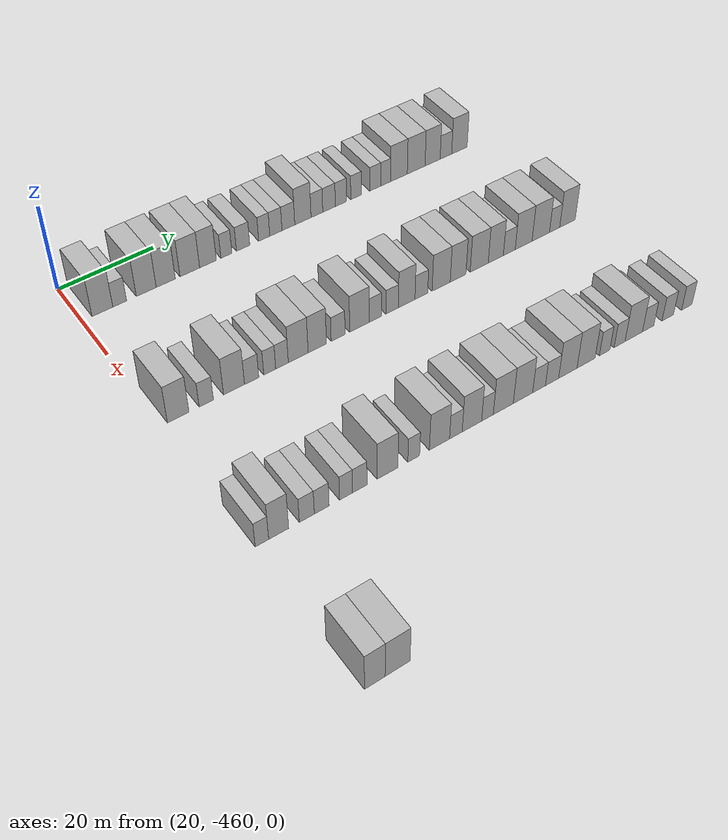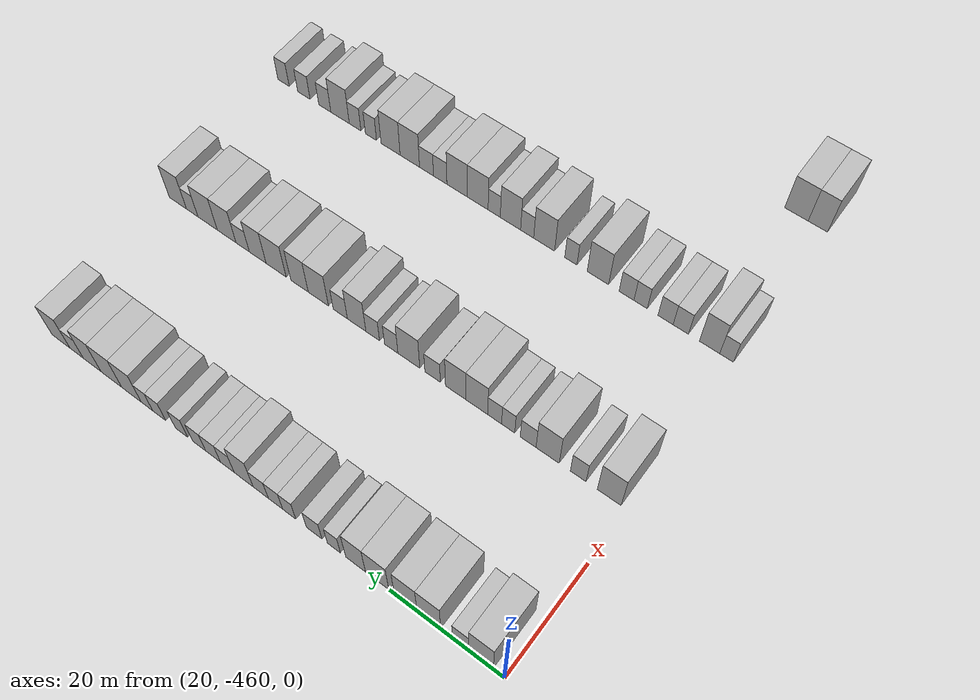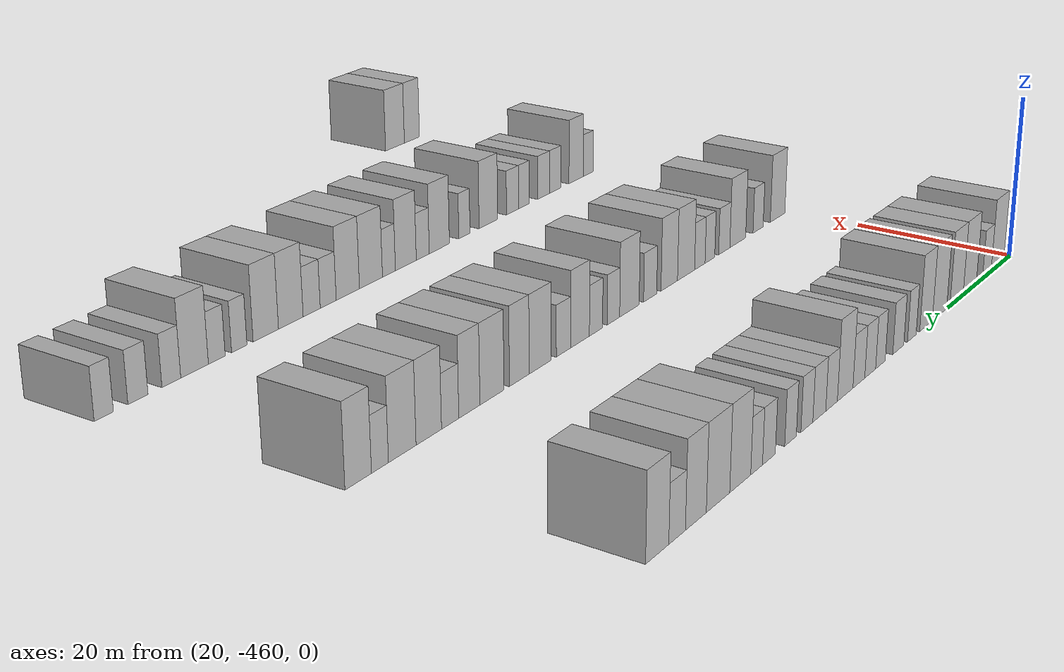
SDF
<sdf version="1.6">
 <world name="default">
  <model name="building_1">
   <static>1</static>
   <pose>25.0000 -455.8890 0 0.000000 0.000000 0.000000</pose>
   <link name="link">
    <pose>0 0 4.50 0 0 0</pose>
    <collision name="collision"><geometry><box><size>10.0000 4.2220 9.0000</size></box></geometry></collision>
    <visual name="visual">
     <cast_shadows>0</cast_shadows>
     <geometry><box><size>10.0000 4.2220 9.0000</size></box></geometry>
     <material>
      <script>
       <uri>model://HANNAS_wall/materials/scripts</uri>
       <uri>model://HANNAS_wall/materials/textures</uri>
       <name>vrc/HANNAS_wall</name>
      </script>
     </material>
    </visual>
   </link>
  </model>
  <model name="building_2">
   <static>1</static>
   <pose>25.0000 -452.3694 0 0.000000 0.000000 0.000000</pose>
   <link name="link">
    <pose>0 0 3.00 0 0 0</pose>
    <collision name="collision"><geometry><box><size>10.0000 2.8172 6.0000</size></box></geometry></collision>
    <visual name="visual">
     <cast_shadows>0</cast_shadows>
     <geometry><box><size>10.0000 2.8172 6.0000</size></box></geometry>
     <material>
      <script>
       <uri>model://HANNAS_wall/materials/scripts</uri>
       <uri>model://HANNAS_wall/materials/textures</uri>
       <name>vrc/HANNAS_wall</name>
      </script>
     </material>
    </visual>
   </link>
  </model>
  <model name="building_3">
   <static>1</static>
   <pose>25.0000 -446.8849 0 0.000000 0.000000 0.000000</pose>
   <link name="link">
    <pose>0 0 4.50 0 0 0</pose>
    <collision name="collision"><geometry><box><size>10.0000 4.1517 9.0000</size></box></geometry></collision>
    <visual name="visual">
     <cast_shadows>0</cast_shadows>
     <geometry><box><size>10.0000 4.1517 9.0000</size></box></geometry>
     <material>
      <script>
       <uri>model://HANNAS_wall/materials/scripts</uri>
       <uri>model://HANNAS_wall/materials/textures</uri>
       <name>vrc/HANNAS_wall</name>
      </script>
     </material>
    </visual>
   </link>
  </model>
  <model name="building_4">
   <static>1</static>
   <pose>25.0000 -442.7926 0 0.000000 0.000000 0.000000</pose>
   <link name="link">
    <pose>0 0 4.50 0 0 0</pose>
    <collision name="collision"><geometry><box><size>10.0000 4.0331 9.0000</size></box></geometry></collision>
    <visual name="visual">
     <cast_shadows>0</cast_shadows>
     <geometry><box><size>10.0000 4.0331 9.0000</size></box></geometry>
     <material>
      <script>
       <uri>model://HANNAS_wall/materials/scripts</uri>
       <uri>model://HANNAS_wall/materials/textures</uri>
       <name>vrc/HANNAS_wall</name>
      </script>
     </material>
    </visual>
   </link>
  </model>
  <model name="building_5">
   <static>1</static>
   <pose>25.0000 -437.6723 0 0.000000 0.000000 0.000000</pose>
   <link name="link">
    <pose>0 0 4.50 0 0 0</pose>
    <collision name="collision"><geometry><box><size>10.0000 4.2074 9.0000</size></box></geometry></collision>
    <visual name="visual">
     <cast_shadows>0</cast_shadows>
     <geometry><box><size>10.0000 4.2074 9.0000</size></box></geometry>
     <material>
      <script>
       <uri>model://HANNAS_wall/materials/scripts</uri>
       <uri>model://HANNAS_wall/materials/textures</uri>
       <name>vrc/HANNAS_wall</name>
      </script>
     </material>
    </visual>
   </link>
  </model>
  <model name="building_6">
   <static>1</static>
   <pose>25.0000 -433.7566 0 0.000000 0.000000 0.000000</pose>
   <link name="link">
    <pose>0 0 4.50 0 0 0</pose>
    <collision name="collision"><geometry><box><size>10.0000 3.6240 9.0000</size></box></geometry></collision>
    <visual name="visual">
     <cast_shadows>0</cast_shadows>
     <geometry><box><size>10.0000 3.6240 9.0000</size></box></geometry>
     <material>
      <script>
       <uri>model://HANNAS_wall/materials/scripts</uri>
       <uri>model://HANNAS_wall/materials/textures</uri>
       <name>vrc/HANNAS_wall</name>
      </script>
     </material>
    </visual>
   </link>
  </model>
  <model name="building_7">
   <static>1</static>
   <pose>25.0000 -429.7346 0 0.000000 0.000000 0.000000</pose>
   <link name="link">
    <pose>0 0 3.00 0 0 0</pose>
    <collision name="collision"><geometry><box><size>10.0000 2.4200 6.0000</size></box></geometry></collision>
    <visual name="visual">
     <cast_shadows>0</cast_shadows>
     <geometry><box><size>10.0000 2.4200 6.0000</size></box></geometry>
     <material>
      <script>
       <uri>model://HANNAS_wall/materials/scripts</uri>
       <uri>model://HANNAS_wall/materials/textures</uri>
       <name>vrc/HANNAS_wall</name>
      </script>
     </material>
    </visual>
   </link>
  </model>
  <model name="building_8">
   <static>1</static>
   <pose>25.0000 -426.0421 0 0.000000 0.000000 0.000000</pose>
   <link name="link">
    <pose>0 0 3.00 0 0 0</pose>
    <collision name="collision"><geometry><box><size>10.0000 2.9650 6.0000</size></box></geometry></collision>
    <visual name="visual">
     <cast_shadows>0</cast_shadows>
     <geometry><box><size>10.0000 2.9650 6.0000</size></box></geometry>
     <material>
      <script>
       <uri>model://HANNAS_wall/materials/scripts</uri>
       <uri>model://HANNAS_wall/materials/textures</uri>
       <name>vrc/HANNAS_wall</name>
      </script>
     </material>
    </visual>
   </link>
  </model>
  <model name="building_9">
   <static>1</static>
   <pose>25.0000 -421.3107 0 0.000000 0.000000 0.000000</pose>
   <link name="link">
    <pose>0 0 3.00 0 0 0</pose>
    <collision name="collision"><geometry><box><size>10.0000 2.4979 6.0000</size></box></geometry></collision>
    <visual name="visual">
     <cast_shadows>0</cast_shadows>
     <geometry><box><size>10.0000 2.4979 6.0000</size></box></geometry>
     <material>
      <script>
       <uri>model://HANNAS_wall/materials/scripts</uri>
       <uri>model://HANNAS_wall/materials/textures</uri>
       <name>vrc/HANNAS_wall</name>
      </script>
     </material>
    </visual>
   </link>
  </model>
  <model name="building_10">
   <static>1</static>
   <pose>25.0000 -418.6760 0 0.000000 0.000000 0.000000</pose>
   <link name="link">
    <pose>0 0 3.00 0 0 0</pose>
    <collision name="collision"><geometry><box><size>10.0000 2.7715 6.0000</size></box></geometry></collision>
    <visual name="visual">
     <cast_shadows>0</cast_shadows>
     <geometry><box><size>10.0000 2.7715 6.0000</size></box></geometry>
     <material>
      <script>
       <uri>model://HANNAS_wall/materials/scripts</uri>
       <uri>model://HANNAS_wall/materials/textures</uri>
       <name>vrc/HANNAS_wall</name>
      </script>
     </material>
    </visual>
   </link>
  </model>
  <model name="building_11">
   <static>1</static>
   <pose>25.0000 -415.8218 0 0.000000 0.000000 0.000000</pose>
   <link name="link">
    <pose>0 0 3.00 0 0 0</pose>
    <collision name="collision"><geometry><box><size>10.0000 2.9370 6.0000</size></box></geometry></collision>
    <visual name="visual">
     <cast_shadows>0</cast_shadows>
     <geometry><box><size>10.0000 2.9370 6.0000</size></box></geometry>
     <material>
      <script>
       <uri>model://HANNAS_wall/materials/scripts</uri>
       <uri>model://HANNAS_wall/materials/textures</uri>
       <name>vrc/HANNAS_wall</name>
      </script>
     </material>
    </visual>
   </link>
  </model>
  <model name="building_12">
   <static>1</static>
   <pose>25.0000 -412.4712 0 0.000000 0.000000 0.000000</pose>
   <link name="link">
    <pose>0 0 4.50 0 0 0</pose>
    <collision name="collision"><geometry><box><size>10.0000 3.7641 9.0000</size></box></geometry></collision>
    <visual name="visual">
     <cast_shadows>0</cast_shadows>
     <geometry><box><size>10.0000 3.7641 9.0000</size></box></geometry>
     <material>
      <script>
       <uri>model://HANNAS_wall/materials/scripts</uri>
       <uri>model://HANNAS_wall/materials/textures</uri>
       <name>vrc/HANNAS_wall</name>
      </script>
     </material>
    </visual>
   </link>
  </model>
  <model name="building_13">
   <static>1</static>
   <pose>25.0000 -409.2177 0 0.000000 0.000000 0.000000</pose>
   <link name="link">
    <pose>0 0 3.00 0 0 0</pose>
    <collision name="collision"><geometry><box><size>10.0000 2.7430 6.0000</size></box></geometry></collision>
    <visual name="visual">
     <cast_shadows>0</cast_shadows>
     <geometry><box><size>10.0000 2.7430 6.0000</size></box></geometry>
     <material>
      <script>
       <uri>model://HANNAS_wall/materials/scripts</uri>
       <uri>model://HANNAS_wall/materials/textures</uri>
       <name>vrc/HANNAS_wall</name>
      </script>
     </material>
    </visual>
   </link>
  </model>
  <model name="building_14">
   <static>1</static>
   <pose>25.0000 -406.3590 0 0.000000 0.000000 0.000000</pose>
   <link name="link">
    <pose>0 0 3.00 0 0 0</pose>
    <collision name="collision"><geometry><box><size>10.0000 2.9744 6.0000</size></box></geometry></collision>
    <visual name="visual">
     <cast_shadows>0</cast_shadows>
     <geometry><box><size>10.0000 2.9744 6.0000</size></box></geometry>
     <material>
      <script>
       <uri>model://HANNAS_wall/materials/scripts</uri>
       <uri>model://HANNAS_wall/materials/textures</uri>
       <name>vrc/HANNAS_wall</name>
      </script>
     </material>
    </visual>
   </link>
  </model>
  <model name="building_15">
   <static>1</static>
   <pose>25.0000 -403.5339 0 0.000000 0.000000 0.000000</pose>
   <link name="link">
    <pose>0 0 3.00 0 0 0</pose>
    <collision name="collision"><geometry><box><size>10.0000 2.6758 6.0000</size></box></geometry></collision>
    <visual name="visual">
     <cast_shadows>0</cast_shadows>
     <geometry><box><size>10.0000 2.6758 6.0000</size></box></geometry>
     <material>
      <script>
       <uri>model://HANNAS_wall/materials/scripts</uri>
       <uri>model://HANNAS_wall/materials/textures</uri>
       <name>vrc/HANNAS_wall</name>
      </script>
     </material>
    </visual>
   </link>
  </model>
  <model name="building_16">
   <static>1</static>
   <pose>25.0000 -399.9270 0 0.000000 0.000000 0.000000</pose>
   <link name="link">
    <pose>0 0 3.00 0 0 0</pose>
    <collision name="collision"><geometry><box><size>10.0000 2.5380 6.0000</size></box></geometry></collision>
    <visual name="visual">
     <cast_shadows>0</cast_shadows>
     <geometry><box><size>10.0000 2.5380 6.0000</size></box></geometry>
     <material>
      <script>
       <uri>model://HANNAS_wall/materials/scripts</uri>
       <uri>model://HANNAS_wall/materials/textures</uri>
       <name>vrc/HANNAS_wall</name>
      </script>
     </material>
    </visual>
   </link>
  </model>
  <model name="building_17">
   <static>1</static>
   <pose>25.0000 -395.3176 0 0.000000 0.000000 0.000000</pose>
   <link name="link">
    <pose>0 0 3.00 0 0 0</pose>
    <collision name="collision"><geometry><box><size>10.0000 2.6808 6.0000</size></box></geometry></collision>
    <visual name="visual">
     <cast_shadows>0</cast_shadows>
     <geometry><box><size>10.0000 2.6808 6.0000</size></box></geometry>
     <material>
      <script>
       <uri>model://HANNAS_wall/materials/scripts</uri>
       <uri>model://HANNAS_wall/materials/textures</uri>
       <name>vrc/HANNAS_wall</name>
      </script>
     </material>
    </visual>
   </link>
  </model>
  <model name="building_18">
   <static>1</static>
   <pose>25.0000 -392.7767 0 0.000000 0.000000 0.000000</pose>
   <link name="link">
    <pose>0 0 3.00 0 0 0</pose>
    <collision name="collision"><geometry><box><size>10.0000 2.4010 6.0000</size></box></geometry></collision>
    <visual name="visual">
     <cast_shadows>0</cast_shadows>
     <geometry><box><size>10.0000 2.4010 6.0000</size></box></geometry>
     <material>
      <script>
       <uri>model://HANNAS_wall/materials/scripts</uri>
       <uri>model://HANNAS_wall/materials/textures</uri>
       <name>vrc/HANNAS_wall</name>
      </script>
     </material>
    </visual>
   </link>
  </model>
  <model name="building_19">
   <static>1</static>
   <pose>25.0000 -389.4952 0 0.000000 0.000000 0.000000</pose>
   <link name="link">
    <pose>0 0 4.50 0 0 0</pose>
    <collision name="collision"><geometry><box><size>10.0000 4.1621 9.0000</size></box></geometry></collision>
    <visual name="visual">
     <cast_shadows>0</cast_shadows>
     <geometry><box><size>10.0000 4.1621 9.0000</size></box></geometry>
     <material>
      <script>
       <uri>model://HANNAS_wall/materials/scripts</uri>
       <uri>model://HANNAS_wall/materials/textures</uri>
       <name>vrc/HANNAS_wall</name>
      </script>
     </material>
    </visual>
   </link>
  </model>
  <model name="building_20">
   <static>1</static>
   <pose>25.0000 -385.1823 0 0.000000 0.000000 0.000000</pose>
   <link name="link">
    <pose>0 0 4.50 0 0 0</pose>
    <collision name="collision"><geometry><box><size>10.0000 4.4636 9.0000</size></box></geometry></collision>
    <visual name="visual">
     <cast_shadows>0</cast_shadows>
     <geometry><box><size>10.0000 4.4636 9.0000</size></box></geometry>
     <material>
      <script>
       <uri>model://HANNAS_wall/materials/scripts</uri>
       <uri>model://HANNAS_wall/materials/textures</uri>
       <name>vrc/HANNAS_wall</name>
      </script>
     </material>
    </visual>
   </link>
  </model>
  <model name="building_21">
   <static>1</static>
   <pose>25.0000 -381.0344 0 0.000000 0.000000 0.000000</pose>
   <link name="link">
    <pose>0 0 4.50 0 0 0</pose>
    <collision name="collision"><geometry><box><size>10.0000 3.8322 9.0000</size></box></geometry></collision>
    <visual name="visual">
     <cast_shadows>0</cast_shadows>
     <geometry><box><size>10.0000 3.8322 9.0000</size></box></geometry>
     <material>
      <script>
       <uri>model://HANNAS_wall/materials/scripts</uri>
       <uri>model://HANNAS_wall/materials/textures</uri>
       <name>vrc/HANNAS_wall</name>
      </script>
     </material>
    </visual>
   </link>
  </model>
  <model name="building_22">
   <static>1</static>
   <pose>25.0000 -377.6439 0 0.000000 0.000000 0.000000</pose>
   <link name="link">
    <pose>0 0 3.00 0 0 0</pose>
    <collision name="collision"><geometry><box><size>10.0000 2.9487 6.0000</size></box></geometry></collision>
    <visual name="visual">
     <cast_shadows>0</cast_shadows>
     <geometry><box><size>10.0000 2.9487 6.0000</size></box></geometry>
     <material>
      <script>
       <uri>model://HANNAS_wall/materials/scripts</uri>
       <uri>model://HANNAS_wall/materials/textures</uri>
       <name>vrc/HANNAS_wall</name>
      </script>
     </material>
    </visual>
   </link>
  </model>
  <model name="building_23">
   <static>1</static>
   <pose>25.0000 -374.1753 0 0.000000 0.000000 0.000000</pose>
   <link name="link">
    <pose>0 0 4.50 0 0 0</pose>
    <collision name="collision"><geometry><box><size>10.0000 3.9885 9.0000</size></box></geometry></collision>
    <visual name="visual">
     <cast_shadows>0</cast_shadows>
     <geometry><box><size>10.0000 3.9885 9.0000</size></box></geometry>
     <material>
      <script>
       <uri>model://HANNAS_wall/materials/scripts</uri>
       <uri>model://HANNAS_wall/materials/textures</uri>
       <name>vrc/HANNAS_wall</name>
      </script>
     </material>
    </visual>
   </link>
  </model>
  <model name="building_221">
   <static>1</static>
   <pose>55.0000 -456.9193 0 0.000000 0.000000 0.000000</pose>
   <link name="link">
    <pose>0 0 4.50 0 0 0</pose>
    <collision name="collision"><geometry><box><size>10.0000 4.1615 9.0000</size></box></geometry></collision>
    <visual name="visual">
     <cast_shadows>0</cast_shadows>
     <geometry><box><size>10.0000 4.1615 9.0000</size></box></geometry>
     <material>
      <script>
       <uri>model://HANNAS_wall/materials/scripts</uri>
       <uri>model://HANNAS_wall/materials/textures</uri>
       <name>vrc/HANNAS_wall</name>
      </script>
     </material>
    </visual>
   </link>
  </model>
  <model name="building_222">
   <static>1</static>
   <pose>55.0000 -451.4368 0 0.000000 0.000000 0.000000</pose>
   <link name="link">
    <pose>0 0 3.00 0 0 0</pose>
    <collision name="collision"><geometry><box><size>10.0000 2.8035 6.0000</size></box></geometry></collision>
    <visual name="visual">
     <cast_shadows>0</cast_shadows>
     <geometry><box><size>10.0000 2.8035 6.0000</size></box></geometry>
     <material>
      <script>
       <uri>model://HANNAS_wall/materials/scripts</uri>
       <uri>model://HANNAS_wall/materials/textures</uri>
       <name>vrc/HANNAS_wall</name>
      </script>
     </material>
    </visual>
   </link>
  </model>
  <model name="building_223">
   <static>1</static>
   <pose>55.0000 -445.9340 0 0.000000 0.000000 0.000000</pose>
   <link name="link">
    <pose>0 0 4.50 0 0 0</pose>
    <collision name="collision"><geometry><box><size>10.0000 4.2020 9.0000</size></box></geometry></collision>
    <visual name="visual">
     <cast_shadows>0</cast_shadows>
     <geometry><box><size>10.0000 4.2020 9.0000</size></box></geometry>
     <material>
      <script>
       <uri>model://HANNAS_wall/materials/scripts</uri>
       <uri>model://HANNAS_wall/materials/textures</uri>
       <name>vrc/HANNAS_wall</name>
      </script>
     </material>
    </visual>
   </link>
  </model>
  <model name="building_224">
   <static>1</static>
   <pose>55.0000 -442.3796 0 0.000000 0.000000 0.000000</pose>
   <link name="link">
    <pose>0 0 3.00 0 0 0</pose>
    <collision name="collision"><geometry><box><size>10.0000 2.9067 6.0000</size></box></geometry></collision>
    <visual name="visual">
     <cast_shadows>0</cast_shadows>
     <geometry><box><size>10.0000 2.9067 6.0000</size></box></geometry>
     <material>
      <script>
       <uri>model://HANNAS_wall/materials/scripts</uri>
       <uri>model://HANNAS_wall/materials/textures</uri>
       <name>vrc/HANNAS_wall</name>
      </script>
     </material>
    </visual>
   </link>
  </model>
  <model name="building_225">
   <static>1</static>
   <pose>55.0000 -438.6999 0 0.000000 0.000000 0.000000</pose>
   <link name="link">
    <pose>0 0 3.00 0 0 0</pose>
    <collision name="collision"><geometry><box><size>10.0000 2.4529 6.0000</size></box></geometry></collision>
    <visual name="visual">
     <cast_shadows>0</cast_shadows>
     <geometry><box><size>10.0000 2.4529 6.0000</size></box></geometry>
     <material>
      <script>
       <uri>model://HANNAS_wall/materials/scripts</uri>
       <uri>model://HANNAS_wall/materials/textures</uri>
       <name>vrc/HANNAS_wall</name>
      </script>
     </material>
    </visual>
   </link>
  </model>
  <model name="building_226">
   <static>1</static>
   <pose>55.0000 -436.1670 0 0.000000 0.000000 0.000000</pose>
   <link name="link">
    <pose>0 0 3.00 0 0 0</pose>
    <collision name="collision"><geometry><box><size>10.0000 2.6129 6.0000</size></box></geometry></collision>
    <visual name="visual">
     <cast_shadows>0</cast_shadows>
     <geometry><box><size>10.0000 2.6129 6.0000</size></box></geometry>
     <material>
      <script>
       <uri>model://HANNAS_wall/materials/scripts</uri>
       <uri>model://HANNAS_wall/materials/textures</uri>
       <name>vrc/HANNAS_wall</name>
      </script>
     </material>
    </visual>
   </link>
  </model>
  <model name="building_227">
   <static>1</static>
   <pose>55.0000 -432.7892 0 0.000000 0.000000 0.000000</pose>
   <link name="link">
    <pose>0 0 4.50 0 0 0</pose>
    <collision name="collision"><geometry><box><size>10.0000 4.1426 9.0000</size></box></geometry></collision>
    <visual name="visual">
     <cast_shadows>0</cast_shadows>
     <geometry><box><size>10.0000 4.1426 9.0000</size></box></geometry>
     <material>
      <script>
       <uri>model://HANNAS_wall/materials/scripts</uri>
       <uri>model://HANNAS_wall/materials/textures</uri>
       <name>vrc/HANNAS_wall</name>
      </script>
     </material>
    </visual>
   </link>
  </model>
  <model name="building_228">
   <static>1</static>
   <pose>55.0000 -428.7722 0 0.000000 0.000000 0.000000</pose>
   <link name="link">
    <pose>0 0 4.50 0 0 0</pose>
    <collision name="collision"><geometry><box><size>10.0000 3.8914 9.0000</size></box></geometry></collision>
    <visual name="visual">
     <cast_shadows>0</cast_shadows>
     <geometry><box><size>10.0000 3.8914 9.0000</size></box></geometry>
     <material>
      <script>
       <uri>model://HANNAS_wall/materials/scripts</uri>
       <uri>model://HANNAS_wall/materials/textures</uri>
       <name>vrc/HANNAS_wall</name>
      </script>
     </material>
    </visual>
   </link>
  </model>
  <model name="building_229">
   <static>1</static>
   <pose>55.0000 -424.3291 0 0.000000 0.000000 0.000000</pose>
   <link name="link">
    <pose>0 0 3.00 0 0 0</pose>
    <collision name="collision"><geometry><box><size>10.0000 2.9947 6.0000</size></box></geometry></collision>
    <visual name="visual">
     <cast_shadows>0</cast_shadows>
     <geometry><box><size>10.0000 2.9947 6.0000</size></box></geometry>
     <material>
      <script>
       <uri>model://HANNAS_wall/materials/scripts</uri>
       <uri>model://HANNAS_wall/materials/textures</uri>
       <name>vrc/HANNAS_wall</name>
      </script>
     </material>
    </visual>
   </link>
  </model>
  <model name="building_230">
   <static>1</static>
   <pose>55.0000 -419.6788 0 0.000000 0.000000 0.000000</pose>
   <link name="link">
    <pose>0 0 4.50 0 0 0</pose>
    <collision name="collision"><geometry><box><size>10.0000 4.3059 9.0000</size></box></geometry></collision>
    <visual name="visual">
     <cast_shadows>0</cast_shadows>
     <geometry><box><size>10.0000 4.3059 9.0000</size></box></geometry>
     <material>
      <script>
       <uri>model://HANNAS_wall/materials/scripts</uri>
       <uri>model://HANNAS_wall/materials/textures</uri>
       <name>vrc/HANNAS_wall</name>
      </script>
     </material>
    </visual>
   </link>
  </model>
  <model name="building_231">
   <static>1</static>
   <pose>55.0000 -416.1944 0 0.000000 0.000000 0.000000</pose>
   <link name="link">
    <pose>0 0 3.00 0 0 0</pose>
    <collision name="collision"><geometry><box><size>10.0000 2.6628 6.0000</size></box></geometry></collision>
    <visual name="visual">
     <cast_shadows>0</cast_shadows>
     <geometry><box><size>10.0000 2.6628 6.0000</size></box></geometry>
     <material>
      <script>
       <uri>model://HANNAS_wall/materials/scripts</uri>
       <uri>model://HANNAS_wall/materials/textures</uri>
       <name>vrc/HANNAS_wall</name>
      </script>
     </material>
    </visual>
   </link>
  </model>
  <model name="building_232">
   <static>1</static>
   <pose>55.0000 -412.4832 0 0.000000 0.000000 0.000000</pose>
   <link name="link">
    <pose>0 0 3.00 0 0 0</pose>
    <collision name="collision"><geometry><box><size>10.0000 2.7597 6.0000</size></box></geometry></collision>
    <visual name="visual">
     <cast_shadows>0</cast_shadows>
     <geometry><box><size>10.0000 2.7597 6.0000</size></box></geometry>
     <material>
      <script>
       <uri>model://HANNAS_wall/materials/scripts</uri>
       <uri>model://HANNAS_wall/materials/textures</uri>
       <name>vrc/HANNAS_wall</name>
      </script>
     </material>
    </visual>
   </link>
  </model>
  <model name="building_233">
   <static>1</static>
   <pose>55.0000 -409.2207 0 0.000000 0.000000 0.000000</pose>
   <link name="link">
    <pose>0 0 4.50 0 0 0</pose>
    <collision name="collision"><geometry><box><size>10.0000 3.7652 9.0000</size></box></geometry></collision>
    <visual name="visual">
     <cast_shadows>0</cast_shadows>
     <geometry><box><size>10.0000 3.7652 9.0000</size></box></geometry>
     <material>
      <script>
       <uri>model://HANNAS_wall/materials/scripts</uri>
       <uri>model://HANNAS_wall/materials/textures</uri>
       <name>vrc/HANNAS_wall</name>
      </script>
     </material>
    </visual>
   </link>
  </model>
  <model name="building_234">
   <static>1</static>
   <pose>55.0000 -405.8837 0 0.000000 0.000000 0.000000</pose>
   <link name="link">
    <pose>0 0 3.00 0 0 0</pose>
    <collision name="collision"><geometry><box><size>10.0000 2.9087 6.0000</size></box></geometry></collision>
    <visual name="visual">
     <cast_shadows>0</cast_shadows>
     <geometry><box><size>10.0000 2.9087 6.0000</size></box></geometry>
     <material>
      <script>
       <uri>model://HANNAS_wall/materials/scripts</uri>
       <uri>model://HANNAS_wall/materials/textures</uri>
       <name>vrc/HANNAS_wall</name>
      </script>
     </material>
    </visual>
   </link>
  </model>
  <model name="building_235">
   <static>1</static>
   <pose>55.0000 -401.3225 0 0.000000 0.000000 0.000000</pose>
   <link name="link">
    <pose>0 0 4.50 0 0 0</pose>
    <collision name="collision"><geometry><box><size>10.0000 4.2138 9.0000</size></box></geometry></collision>
    <visual name="visual">
     <cast_shadows>0</cast_shadows>
     <geometry><box><size>10.0000 4.2138 9.0000</size></box></geometry>
     <material>
      <script>
       <uri>model://HANNAS_wall/materials/scripts</uri>
       <uri>model://HANNAS_wall/materials/textures</uri>
       <name>vrc/HANNAS_wall</name>
      </script>
     </material>
    </visual>
   </link>
  </model>
  <model name="building_236">
   <static>1</static>
   <pose>55.0000 -397.3807 0 0.000000 0.000000 0.000000</pose>
   <link name="link">
    <pose>0 0 4.50 0 0 0</pose>
    <collision name="collision"><geometry><box><size>10.0000 3.6699 9.0000</size></box></geometry></collision>
    <visual name="visual">
     <cast_shadows>0</cast_shadows>
     <geometry><box><size>10.0000 3.6699 9.0000</size></box></geometry>
     <material>
      <script>
       <uri>model://HANNAS_wall/materials/scripts</uri>
       <uri>model://HANNAS_wall/materials/textures</uri>
       <name>vrc/HANNAS_wall</name>
      </script>
     </material>
    </visual>
   </link>
  </model>
  <model name="building_237">
   <static>1</static>
   <pose>55.0000 -392.3970 0 0.000000 0.000000 0.000000</pose>
   <link name="link">
    <pose>0 0 4.50 0 0 0</pose>
    <collision name="collision"><geometry><box><size>10.0000 4.2975 9.0000</size></box></geometry></collision>
    <visual name="visual">
     <cast_shadows>0</cast_shadows>
     <geometry><box><size>10.0000 4.2975 9.0000</size></box></geometry>
     <material>
      <script>
       <uri>model://HANNAS_wall/materials/scripts</uri>
       <uri>model://HANNAS_wall/materials/textures</uri>
       <name>vrc/HANNAS_wall</name>
      </script>
     </material>
    </visual>
   </link>
  </model>
  <model name="building_238">
   <static>1</static>
   <pose>55.0000 -388.4258 0 0.000000 0.000000 0.000000</pose>
   <link name="link">
    <pose>0 0 4.50 0 0 0</pose>
    <collision name="collision"><geometry><box><size>10.0000 3.6450 9.0000</size></box></geometry></collision>
    <visual name="visual">
     <cast_shadows>0</cast_shadows>
     <geometry><box><size>10.0000 3.6450 9.0000</size></box></geometry>
     <material>
      <script>
       <uri>model://HANNAS_wall/materials/scripts</uri>
       <uri>model://HANNAS_wall/materials/textures</uri>
       <name>vrc/HANNAS_wall</name>
      </script>
     </material>
    </visual>
   </link>
  </model>
  <model name="building_239">
   <static>1</static>
   <pose>55.0000 -385.1523 0 0.000000 0.000000 0.000000</pose>
   <link name="link">
    <pose>0 0 3.00 0 0 0</pose>
    <collision name="collision"><geometry><box><size>10.0000 2.9019 6.0000</size></box></geometry></collision>
    <visual name="visual">
     <cast_shadows>0</cast_shadows>
     <geometry><box><size>10.0000 2.9019 6.0000</size></box></geometry>
     <material>
      <script>
       <uri>model://HANNAS_wall/materials/scripts</uri>
       <uri>model://HANNAS_wall/materials/textures</uri>
       <name>vrc/HANNAS_wall</name>
      </script>
     </material>
    </visual>
   </link>
  </model>
  <model name="building_240">
   <static>1</static>
   <pose>55.0000 -381.6279 0 0.000000 0.000000 0.000000</pose>
   <link name="link">
    <pose>0 0 4.50 0 0 0</pose>
    <collision name="collision"><geometry><box><size>10.0000 4.1470 9.0000</size></box></geometry></collision>
    <visual name="visual">
     <cast_shadows>0</cast_shadows>
     <geometry><box><size>10.0000 4.1470 9.0000</size></box></geometry>
     <material>
      <script>
       <uri>model://HANNAS_wall/materials/scripts</uri>
       <uri>model://HANNAS_wall/materials/textures</uri>
       <name>vrc/HANNAS_wall</name>
      </script>
     </material>
    </visual>
   </link>
  </model>
  <model name="building_241">
   <static>1</static>
   <pose>55.0000 -377.3873 0 0.000000 0.000000 0.000000</pose>
   <link name="link">
    <pose>0 0 4.50 0 0 0</pose>
    <collision name="collision"><geometry><box><size>10.0000 4.3341 9.0000</size></box></geometry></collision>
    <visual name="visual">
     <cast_shadows>0</cast_shadows>
     <geometry><box><size>10.0000 4.3341 9.0000</size></box></geometry>
     <material>
      <script>
       <uri>model://HANNAS_wall/materials/scripts</uri>
       <uri>model://HANNAS_wall/materials/textures</uri>
       <name>vrc/HANNAS_wall</name>
      </script>
     </material>
    </visual>
   </link>
  </model>
  <model name="building_242">
   <static>1</static>
   <pose>55.0000 -373.9273 0 0.000000 0.000000 0.000000</pose>
   <link name="link">
    <pose>0 0 3.00 0 0 0</pose>
    <collision name="collision"><geometry><box><size>10.0000 2.5858 6.0000</size></box></geometry></collision>
    <visual name="visual">
     <cast_shadows>0</cast_shadows>
     <geometry><box><size>10.0000 2.5858 6.0000</size></box></geometry>
     <material>
      <script>
       <uri>model://HANNAS_wall/materials/scripts</uri>
       <uri>model://HANNAS_wall/materials/textures</uri>
       <name>vrc/HANNAS_wall</name>
      </script>
     </material>
    </visual>
   </link>
  </model>
  <model name="building_243">
   <static>1</static>
   <pose>55.0000 -370.6702 0 0.000000 0.000000 0.000000</pose>
   <link name="link">
    <pose>0 0 4.50 0 0 0</pose>
    <collision name="collision"><geometry><box><size>10.0000 3.9283 9.0000</size></box></geometry></collision>
    <visual name="visual">
     <cast_shadows>0</cast_shadows>
     <geometry><box><size>10.0000 3.9283 9.0000</size></box></geometry>
     <material>
      <script>
       <uri>model://HANNAS_wall/materials/scripts</uri>
       <uri>model://HANNAS_wall/materials/textures</uri>
       <name>vrc/HANNAS_wall</name>
      </script>
     </material>
    </visual>
   </link>
  </model>
  <model name="building_454">
   <static>1</static>
   <pose>85.0000 -458.7617 0 0.000000 0.000000 0.000000</pose>
   <link name="link">
    <pose>0 0 3.00 0 0 0</pose>
    <collision name="collision"><geometry><box><size>10.0000 2.4766 6.0000</size></box></geometry></collision>
    <visual name="visual">
     <cast_shadows>0</cast_shadows>
     <geometry><box><size>10.0000 2.4766 6.0000</size></box></geometry>
     <material>
      <script>
       <uri>model://HANNAS_wall/materials/scripts</uri>
       <uri>model://HANNAS_wall/materials/textures</uri>
       <name>vrc/HANNAS_wall</name>
      </script>
     </material>
    </visual>
   </link>
  </model>
  <model name="building_455">
   <static>1</static>
   <pose>85.0000 -455.6741 0 0.000000 0.000000 0.000000</pose>
   <link name="link">
    <pose>0 0 4.50 0 0 0</pose>
    <collision name="collision"><geometry><box><size>10.0000 3.6985 9.0000</size></box></geometry></collision>
    <visual name="visual">
     <cast_shadows>0</cast_shadows>
     <geometry><box><size>10.0000 3.6985 9.0000</size></box></geometry>
     <material>
      <script>
       <uri>model://HANNAS_wall/materials/scripts</uri>
       <uri>model://HANNAS_wall/materials/textures</uri>
       <name>vrc/HANNAS_wall</name>
      </script>
     </material>
    </visual>
   </link>
  </model>
  <model name="building_456">
   <static>1</static>
   <pose>85.0000 -450.4075 0 0.000000 0.000000 0.000000</pose>
   <link name="link">
    <pose>0 0 3.00 0 0 0</pose>
    <collision name="collision"><geometry><box><size>10.0000 2.8347 6.0000</size></box></geometry></collision>
    <visual name="visual">
     <cast_shadows>0</cast_shadows>
     <geometry><box><size>10.0000 2.8347 6.0000</size></box></geometry>
     <material>
      <script>
       <uri>model://HANNAS_wall/materials/scripts</uri>
       <uri>model://HANNAS_wall/materials/textures</uri>
       <name>vrc/HANNAS_wall</name>
      </script>
     </material>
    </visual>
   </link>
  </model>
  <model name="building_457">
   <static>1</static>
   <pose>85.0000 -447.5774 0 0.000000 0.000000 0.000000</pose>
   <link name="link">
    <pose>0 0 3.00 0 0 0</pose>
    <collision name="collision"><geometry><box><size>10.0000 2.8254 6.0000</size></box></geometry></collision>
    <visual name="visual">
     <cast_shadows>0</cast_shadows>
     <geometry><box><size>10.0000 2.8254 6.0000</size></box></geometry>
     <material>
      <script>
       <uri>model://HANNAS_wall/materials/scripts</uri>
       <uri>model://HANNAS_wall/materials/textures</uri>
       <name>vrc/HANNAS_wall</name>
      </script>
     </material>
    </visual>
   </link>
  </model>
  <model name="building_458">
   <static>1</static>
   <pose>85.0000 -442.9022 0 0.000000 0.000000 0.000000</pose>
   <link name="link">
    <pose>0 0 3.00 0 0 0</pose>
    <collision name="collision"><geometry><box><size>10.0000 2.5251 6.0000</size></box></geometry></collision>
    <visual name="visual">
     <cast_shadows>0</cast_shadows>
     <geometry><box><size>10.0000 2.5251 6.0000</size></box></geometry>
     <material>
      <script>
       <uri>model://HANNAS_wall/materials/scripts</uri>
       <uri>model://HANNAS_wall/materials/textures</uri>
       <name>vrc/HANNAS_wall</name>
      </script>
     </material>
    </visual>
   </link>
  </model>
  <model name="building_459">
   <static>1</static>
   <pose>85.0000 -440.2230 0 0.000000 0.000000 0.000000</pose>
   <link name="link">
    <pose>0 0 3.00 0 0 0</pose>
    <collision name="collision"><geometry><box><size>10.0000 2.8334 6.0000</size></box></geometry></collision>
    <visual name="visual">
     <cast_shadows>0</cast_shadows>
     <geometry><box><size>10.0000 2.8334 6.0000</size></box></geometry>
     <material>
      <script>
       <uri>model://HANNAS_wall/materials/scripts</uri>
       <uri>model://HANNAS_wall/materials/textures</uri>
       <name>vrc/HANNAS_wall</name>
      </script>
     </material>
    </visual>
   </link>
  </model>
  <model name="building_460">
   <static>1</static>
   <pose>85.0000 -434.7252 0 0.000000 0.000000 0.000000</pose>
   <link name="link">
    <pose>0 0 4.50 0 0 0</pose>
    <collision name="collision"><geometry><box><size>10.0000 4.1620 9.0000</size></box></geometry></collision>
    <visual name="visual">
     <cast_shadows>0</cast_shadows>
     <geometry><box><size>10.0000 4.1620 9.0000</size></box></geometry>
     <material>
      <script>
       <uri>model://HANNAS_wall/materials/scripts</uri>
       <uri>model://HANNAS_wall/materials/textures</uri>
       <name>vrc/HANNAS_wall</name>
      </script>
     </material>
    </visual>
   </link>
  </model>
  <model name="building_461">
   <static>1</static>
   <pose>85.0000 -429.4417 0 0.000000 0.000000 0.000000</pose>
   <link name="link">
    <pose>0 0 3.00 0 0 0</pose>
    <collision name="collision"><geometry><box><size>10.0000 2.4050 6.0000</size></box></geometry></collision>
    <visual name="visual">
     <cast_shadows>0</cast_shadows>
     <geometry><box><size>10.0000 2.4050 6.0000</size></box></geometry>
     <material>
      <script>
       <uri>model://HANNAS_wall/materials/scripts</uri>
       <uri>model://HANNAS_wall/materials/textures</uri>
       <name>vrc/HANNAS_wall</name>
      </script>
     </material>
    </visual>
   </link>
  </model>
  <model name="building_462">
   <static>1</static>
   <pose>85.0000 -424.1467 0 0.000000 0.000000 0.000000</pose>
   <link name="link">
    <pose>0 0 4.50 0 0 0</pose>
    <collision name="collision"><geometry><box><size>10.0000 4.1852 9.0000</size></box></geometry></collision>
    <visual name="visual">
     <cast_shadows>0</cast_shadows>
     <geometry><box><size>10.0000 4.1852 9.0000</size></box></geometry>
     <material>
      <script>
       <uri>model://HANNAS_wall/materials/scripts</uri>
       <uri>model://HANNAS_wall/materials/textures</uri>
       <name>vrc/HANNAS_wall</name>
      </script>
     </material>
    </visual>
   </link>
  </model>
  <model name="building_463">
   <static>1</static>
   <pose>85.0000 -420.7326 0 0.000000 0.000000 0.000000</pose>
   <link name="link">
    <pose>0 0 3.00 0 0 0</pose>
    <collision name="collision"><geometry><box><size>10.0000 2.6429 6.0000</size></box></geometry></collision>
    <visual name="visual">
     <cast_shadows>0</cast_shadows>
     <geometry><box><size>10.0000 2.6429 6.0000</size></box></geometry>
     <material>
      <script>
       <uri>model://HANNAS_wall/materials/scripts</uri>
       <uri>model://HANNAS_wall/materials/textures</uri>
       <name>vrc/HANNAS_wall</name>
      </script>
     </material>
    </visual>
   </link>
  </model>
  <model name="building_464">
   <static>1</static>
   <pose>85.0000 -417.3429 0 0.000000 0.000000 0.000000</pose>
   <link name="link">
    <pose>0 0 4.50 0 0 0</pose>
    <collision name="collision"><geometry><box><size>10.0000 4.1366 9.0000</size></box></geometry></collision>
    <visual name="visual">
     <cast_shadows>0</cast_shadows>
     <geometry><box><size>10.0000 4.1366 9.0000</size></box></geometry>
     <material>
      <script>
       <uri>model://HANNAS_wall/materials/scripts</uri>
       <uri>model://HANNAS_wall/materials/textures</uri>
       <name>vrc/HANNAS_wall</name>
      </script>
     </material>
    </visual>
   </link>
  </model>
  <model name="building_465">
   <static>1</static>
   <pose>85.0000 -414.0177 0 0.000000 0.000000 0.000000</pose>
   <link name="link">
    <pose>0 0 3.00 0 0 0</pose>
    <collision name="collision"><geometry><box><size>10.0000 2.5138 6.0000</size></box></geometry></collision>
    <visual name="visual">
     <cast_shadows>0</cast_shadows>
     <geometry><box><size>10.0000 2.5138 6.0000</size></box></geometry>
     <material>
      <script>
       <uri>model://HANNAS_wall/materials/scripts</uri>
       <uri>model://HANNAS_wall/materials/textures</uri>
       <name>vrc/HANNAS_wall</name>
      </script>
     </material>
    </visual>
   </link>
  </model>
  <model name="building_466">
   <static>1</static>
   <pose>85.0000 -410.5834 0 0.000000 0.000000 0.000000</pose>
   <link name="link">
    <pose>0 0 4.50 0 0 0</pose>
    <collision name="collision"><geometry><box><size>10.0000 4.3547 9.0000</size></box></geometry></collision>
    <visual name="visual">
     <cast_shadows>0</cast_shadows>
     <geometry><box><size>10.0000 4.3547 9.0000</size></box></geometry>
     <material>
      <script>
       <uri>model://HANNAS_wall/materials/scripts</uri>
       <uri>model://HANNAS_wall/materials/textures</uri>
       <name>vrc/HANNAS_wall</name>
      </script>
     </material>
    </visual>
   </link>
  </model>
  <model name="building_467">
   <static>1</static>
   <pose>85.0000 -406.2741 0 0.000000 0.000000 0.000000</pose>
   <link name="link">
    <pose>0 0 4.50 0 0 0</pose>
    <collision name="collision"><geometry><box><size>10.0000 4.2638 9.0000</size></box></geometry></collision>
    <visual name="visual">
     <cast_shadows>0</cast_shadows>
     <geometry><box><size>10.0000 4.2638 9.0000</size></box></geometry>
     <material>
      <script>
       <uri>model://HANNAS_wall/materials/scripts</uri>
       <uri>model://HANNAS_wall/materials/textures</uri>
       <name>vrc/HANNAS_wall</name>
      </script>
     </material>
    </visual>
   </link>
  </model>
  <model name="building_468">
   <static>1</static>
   <pose>85.0000 -402.7149 0 0.000000 0.000000 0.000000</pose>
   <link name="link">
    <pose>0 0 3.00 0 0 0</pose>
    <collision name="collision"><geometry><box><size>10.0000 2.8546 6.0000</size></box></geometry></collision>
    <visual name="visual">
     <cast_shadows>0</cast_shadows>
     <geometry><box><size>10.0000 2.8546 6.0000</size></box></geometry>
     <material>
      <script>
       <uri>model://HANNAS_wall/materials/scripts</uri>
       <uri>model://HANNAS_wall/materials/textures</uri>
       <name>vrc/HANNAS_wall</name>
      </script>
     </material>
    </visual>
   </link>
  </model>
  <model name="building_469">
   <static>1</static>
   <pose>85.0000 -399.7925 0 0.000000 0.000000 0.000000</pose>
   <link name="link">
    <pose>0 0 3.00 0 0 0</pose>
    <collision name="collision"><geometry><box><size>10.0000 2.9901 6.0000</size></box></geometry></collision>
    <visual name="visual">
     <cast_shadows>0</cast_shadows>
     <geometry><box><size>10.0000 2.9901 6.0000</size></box></geometry>
     <material>
      <script>
       <uri>model://HANNAS_wall/materials/scripts</uri>
       <uri>model://HANNAS_wall/materials/textures</uri>
       <name>vrc/HANNAS_wall</name>
      </script>
     </material>
    </visual>
   </link>
  </model>
  <model name="building_470">
   <static>1</static>
   <pose>85.0000 -396.1970 0 0.000000 0.000000 0.000000</pose>
   <link name="link">
    <pose>0 0 4.50 0 0 0</pose>
    <collision name="collision"><geometry><box><size>10.0000 4.2009 9.0000</size></box></geometry></collision>
    <visual name="visual">
     <cast_shadows>0</cast_shadows>
     <geometry><box><size>10.0000 4.2009 9.0000</size></box></geometry>
     <material>
      <script>
       <uri>model://HANNAS_wall/materials/scripts</uri>
       <uri>model://HANNAS_wall/materials/textures</uri>
       <name>vrc/HANNAS_wall</name>
      </script>
     </material>
    </visual>
   </link>
  </model>
  <model name="building_471">
   <static>1</static>
   <pose>85.0000 -392.0049 0 0.000000 0.000000 0.000000</pose>
   <link name="link">
    <pose>0 0 4.50 0 0 0</pose>
    <collision name="collision"><geometry><box><size>10.0000 4.1835 9.0000</size></box></geometry></collision>
    <visual name="visual">
     <cast_shadows>0</cast_shadows>
     <geometry><box><size>10.0000 4.1835 9.0000</size></box></geometry>
     <material>
      <script>
       <uri>model://HANNAS_wall/materials/scripts</uri>
       <uri>model://HANNAS_wall/materials/textures</uri>
       <name>vrc/HANNAS_wall</name>
      </script>
     </material>
    </visual>
   </link>
  </model>
  <model name="building_472">
   <static>1</static>
   <pose>85.0000 -387.6857 0 0.000000 0.000000 0.000000</pose>
   <link name="link">
    <pose>0 0 3.00 0 0 0</pose>
    <collision name="collision"><geometry><box><size>10.0000 2.4549 6.0000</size></box></geometry></collision>
    <visual name="visual">
     <cast_shadows>0</cast_shadows>
     <geometry><box><size>10.0000 2.4549 6.0000</size></box></geometry>
     <material>
      <script>
       <uri>model://HANNAS_wall/materials/scripts</uri>
       <uri>model://HANNAS_wall/materials/textures</uri>
       <name>vrc/HANNAS_wall</name>
      </script>
     </material>
    </visual>
   </link>
  </model>
  <model name="building_473">
   <static>1</static>
   <pose>85.0000 -384.1531 0 0.000000 0.000000 0.000000</pose>
   <link name="link">
    <pose>0 0 3.00 0 0 0</pose>
    <collision name="collision"><geometry><box><size>10.0000 2.6103 6.0000</size></box></geometry></collision>
    <visual name="visual">
     <cast_shadows>0</cast_shadows>
     <geometry><box><size>10.0000 2.6103 6.0000</size></box></geometry>
     <material>
      <script>
       <uri>model://HANNAS_wall/materials/scripts</uri>
       <uri>model://HANNAS_wall/materials/textures</uri>
       <name>vrc/HANNAS_wall</name>
      </script>
     </material>
    </visual>
   </link>
  </model>
  <model name="building_474">
   <static>1</static>
   <pose>85.0000 -380.7615 0 0.000000 0.000000 0.000000</pose>
   <link name="link">
    <pose>0 0 4.50 0 0 0</pose>
    <collision name="collision"><geometry><box><size>10.0000 4.1731 9.0000</size></box></geometry></collision>
    <visual name="visual">
     <cast_shadows>0</cast_shadows>
     <geometry><box><size>10.0000 4.1731 9.0000</size></box></geometry>
     <material>
      <script>
       <uri>model://HANNAS_wall/materials/scripts</uri>
       <uri>model://HANNAS_wall/materials/textures</uri>
       <name>vrc/HANNAS_wall</name>
      </script>
     </material>
    </visual>
   </link>
  </model>
  <model name="building_475">
   <static>1</static>
   <pose>85.0000 -377.2927 0 0.000000 0.000000 0.000000</pose>
   <link name="link">
    <pose>0 0 3.00 0 0 0</pose>
    <collision name="collision"><geometry><box><size>10.0000 2.7644 6.0000</size></box></geometry></collision>
    <visual name="visual">
     <cast_shadows>0</cast_shadows>
     <geometry><box><size>10.0000 2.7644 6.0000</size></box></geometry>
     <material>
      <script>
       <uri>model://HANNAS_wall/materials/scripts</uri>
       <uri>model://HANNAS_wall/materials/textures</uri>
       <name>vrc/HANNAS_wall</name>
      </script>
     </material>
    </visual>
   </link>
  </model>
  <model name="building_476">
   <static>1</static>
   <pose>85.0000 -372.4863 0 0.000000 0.000000 0.000000</pose>
   <link name="link">
    <pose>0 0 3.00 0 0 0</pose>
    <collision name="collision"><geometry><box><size>10.0000 2.8483 6.0000</size></box></geometry></collision>
    <visual name="visual">
     <cast_shadows>0</cast_shadows>
     <geometry><box><size>10.0000 2.8483 6.0000</size></box></geometry>
     <material>
      <script>
       <uri>model://HANNAS_wall/materials/scripts</uri>
       <uri>model://HANNAS_wall/materials/textures</uri>
       <name>vrc/HANNAS_wall</name>
      </script>
     </material>
    </visual>
   </link>
  </model>
  <model name="building_477">
   <static>1</static>
   <pose>85.0000 -367.7506 0 0.000000 0.000000 0.000000</pose>
   <link name="link">
    <pose>0 0 3.00 0 0 0</pose>
    <collision name="collision"><geometry><box><size>10.0000 2.6231 6.0000</size></box></geometry></collision>
    <visual name="visual">
     <cast_shadows>0</cast_shadows>
     <geometry><box><size>10.0000 2.6231 6.0000</size></box></geometry>
     <material>
      <script>
       <uri>model://HANNAS_wall/materials/scripts</uri>
       <uri>model://HANNAS_wall/materials/textures</uri>
       <name>vrc/HANNAS_wall</name>
      </script>
     </material>
    </visual>
   </link>
  </model>
  <model name="building_676">
   <static>1</static>
   <pose>115.0000 -458.1864 0 0.000000 0.000000 0.000000</pose>
   <link name="link">
    <pose>0 0 4.50 0 0 0</pose>
    <collision name="collision"><geometry><box><size>10.0000 3.6271 9.0000</size></box></geometry></collision>
    <visual name="visual">
     <cast_shadows>0</cast_shadows>
     <geometry><box><size>10.0000 3.6271 9.0000</size></box></geometry>
     <material>
      <script>
       <uri>model://HANNAS_wall/materials/scripts</uri>
       <uri>model://HANNAS_wall/materials/textures</uri>
       <name>vrc/HANNAS_wall</name>
      </script>
     </material>
    </visual>
   </link>
  </model>
  <model name="building_677">
   <static>1</static>
   <pose>115.0000 -454.1561 0 0.000000 0.000000 0.000000</pose>
   <link name="link">
    <pose>0 0 4.50 0 0 0</pose>
    <collision name="collision"><geometry><box><size>10.0000 4.4336 9.0000</size></box></geometry></collision>
    <visual name="visual">
     <cast_shadows>0</cast_shadows>
     <geometry><box><size>10.0000 4.4336 9.0000</size></box></geometry>
     <material>
      <script>
       <uri>model://HANNAS_wall/materials/scripts</uri>
       <uri>model://HANNAS_wall/materials/textures</uri>
       <name>vrc/HANNAS_wall</name>
      </script>
     </material>
    </visual>
   </link>
  </model>
 </world>
</sdf>
